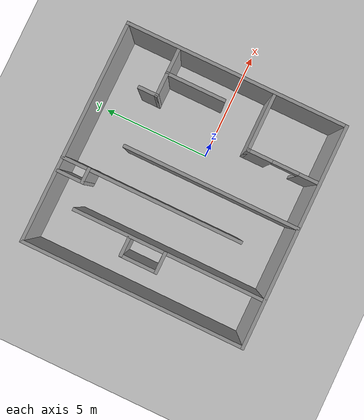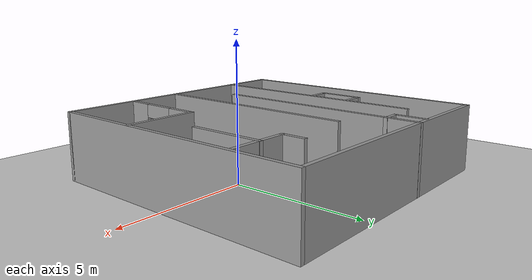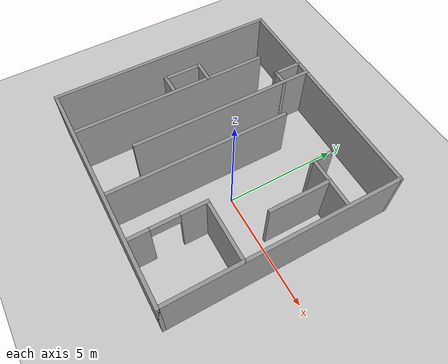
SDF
<sdf version="1.7">
 <world name="default">
  <light name="sun" type="directional">
   <pose>0 0 10 0 -0 0</pose>
   <diffuse>0.8 0.8 0.8 1</diffuse>
   <specular>0.2 0.2 0.2 1</specular>
   <attenuation>
    <range>1000</range>
    <constant>0.9</constant>
    <linear>0.01</linear>
    <quadratic>0.001</quadratic>
   </attenuation>
   <direction>-0.5 0.1 -0.9</direction>
   <spot><inner_angle>0</inner_angle><outer_angle>0</outer_angle><falloff>0</falloff></spot>
  </light>
  <model name="ground_plane">
   <static>1</static>
   <link name="link">
    <collision name="collision">
     <geometry><plane><normal>0 0 1</normal><size>100 100</size></plane></geometry>
     <surface><friction><ode><mu>100</mu><mu2>50</mu2></ode></friction></surface>
    </collision>
    <visual name="visual">
     <cast_shadows>0</cast_shadows>
     <geometry><plane><normal>0 0 1</normal><size>100 100</size></plane></geometry>
     <material>
      <script><uri>file://media/materials/scripts/gazebo.material</uri><name>Gazebo/Grey</name></script>
     </material>
    </visual>
   </link>
  </model>
  <gravity>0 0 -9.8</gravity>
  <magnetic_field>6e-06 2.3e-05 -4.2e-05</magnetic_field>
  <atmosphere type="adiabatic"/>
  <physics type="ode">
   <max_step_size>0.001</max_step_size>
   <real_time_factor>1</real_time_factor>
   <real_time_update_rate>1000</real_time_update_rate>
  </physics>
  <scene><ambient>0.4 0.4 0.4 1</ambient><background>0.7 0.7 0.7 1</background><shadows>1</shadows></scene>
  <spherical_coordinates>
   <surface_model>EARTH_WGS84</surface_model>
   <latitude_deg>0</latitude_deg>
   <longitude_deg>0</longitude_deg>
   <elevation>0</elevation>
   <heading_deg>0</heading_deg>
  </spherical_coordinates>
  <model name="test_nav">
   <pose>-1.63134 0.286027 0 0 0 -1.57657</pose>
   <link name="Wall_1">
    <collision name="Wall_1_Collision">
     <geometry><box><size>10.15 0.15 2.5</size></box></geometry>
     <pose>0 0 1.25 0 -0 0</pose>
    </collision>
    <visual name="Wall_1_Visual">
     <pose>0 0 1.25 0 -0 0</pose>
     <geometry><box><size>10.15 0.15 2.5</size></box></geometry>
     <material>
      <script><uri>file://media/materials/scripts/gazebo.material</uri><name>Gazebo/Grey</name></script>
      <ambient>1 1 1 1</ambient>
     </material>
     <meta><layer>0</layer></meta>
    </visual>
    <pose>-4.99761 0 0 0 -0 -1.5708</pose>
   </link>
   <link name="Wall_10">
    <collision name="Wall_10_Collision">
     <geometry><box><size>2.229 0.15 2.5</size></box></geometry>
     <pose>0 0 1.25 0 -0 0</pose>
    </collision>
    <visual name="Wall_10_Visual">
     <pose>0 0 1.25 0 -0 0</pose>
     <geometry><box><size>2.229 0.15 2.5</size></box></geometry>
     <material>
      <script><uri>file://media/materials/scripts/gazebo.material</uri><name>Gazebo/Grey</name></script>
      <ambient>1 1 1 1</ambient>
     </material>
     <meta><layer>0</layer></meta>
    </visual>
    <pose>-2.62361 3.8245 0 0 -0 1.5708</pose>
   </link>
   <link name="Wall_12">
    <collision name="Wall_12_Collision">
     <geometry><box><size>2.75 0.15 2.5</size></box></geometry>
     <pose>0 0 1.25 0 -0 0</pose>
    </collision>
    <visual name="Wall_12_Visual">
     <pose>0 0 1.25 0 -0 0</pose>
     <geometry><box><size>2.75 0.15 2.5</size></box></geometry>
     <material>
      <script><uri>file://media/materials/scripts/gazebo.material</uri><name>Gazebo/Grey</name></script>
      <ambient>1 1 1 1</ambient>
     </material>
     <meta><layer>0</layer></meta>
    </visual>
    <pose>-1.32861 3.8 0 0 -0 0</pose>
   </link>
   <link name="Wall_14">
    <collision name="Wall_14_Collision">
     <geometry><box><size>2.75 0.15 2.5</size></box></geometry>
     <pose>0 0 1.25 0 -0 0</pose>
    </collision>
    <visual name="Wall_14_Visual">
     <pose>0 0 1.25 0 -0 0</pose>
     <geometry><box><size>2.75 0.15 2.5</size></box></geometry>
     <material>
      <script><uri>file://media/materials/scripts/gazebo.material</uri><name>Gazebo/Grey</name></script>
      <ambient>1 1 1 1</ambient>
     </material>
     <meta><layer>0</layer></meta>
    </visual>
    <pose>1.76621 3.67736 0 0 -0 -1.5708</pose>
   </link>
   <link name="Wall_15">
    <pose>3.31621 2.37736 0 0 -0 0</pose>
    <visual name="Wall_15_Visual_0">
     <pose>-1.03607 0 1.25 0 -0 0</pose>
     <geometry><box><size>1.17786 0.15 2.5</size></box></geometry>
     <material>
      <script><uri>file://media/materials/scripts/gazebo.material</uri><name>Gazebo/Grey</name></script>
      <ambient>1 1 1 1</ambient>
     </material>
     <meta><layer>0</layer></meta>
    </visual>
    <collision name="Wall_15_Collision_0">
     <geometry><box><size>1.17786 0.15 2.5</size></box></geometry>
     <pose>-1.03607 0 1.25 0 -0 0</pose>
    </collision>
    <visual name="Wall_15_Visual_1">
     <pose>1.18893 0 1.25 0 -0 0</pose>
     <geometry><box><size>0.872144 0.15 2.5</size></box></geometry>
     <material>
      <script><uri>file://media/materials/scripts/gazebo.material</uri><name>Gazebo/Grey</name></script>
      <ambient>1 1 1 1</ambient>
     </material>
     <meta><layer>0</layer></meta>
    </visual>
    <collision name="Wall_15_Collision_1">
     <geometry><box><size>0.872144 0.15 2.5</size></box></geometry>
     <pose>1.18893 0 1.25 0 -0 0</pose>
    </collision>
    <visual name="Wall_15_Visual_2">
     <pose>0.152856 0 2.25 0 -0 0</pose>
     <geometry><box><size>1.2 0.15 0.5</size></box></geometry>
     <material>
      <script><uri>file://media/materials/scripts/gazebo.material</uri><name>Gazebo/Grey</name></script>
      <ambient>1 1 1 1</ambient>
     </material>
     <meta><layer>0</layer></meta>
    </visual>
    <collision name="Wall_15_Collision_2">
     <geometry><box><size>1.2 0.15 0.5</size></box></geometry>
     <pose>0.152856 0 2.25 0 -0 0</pose>
    </collision>
   </link>
   <link name="Wall_19">
    <collision name="Wall_19_Collision">
     <geometry><box><size>8 0.15 2.5</size></box></geometry>
     <pose>0 0 1.25 0 -0 0</pose>
    </collision>
    <visual name="Wall_19_Visual">
     <pose>0 0 1.25 0 -0 0</pose>
     <geometry><box><size>8 0.15 2.5</size></box></geometry>
     <material>
      <script><uri>file://media/materials/scripts/gazebo.material</uri><name>Gazebo/Grey</name></script>
      <ambient>1 1 1 1</ambient>
     </material>
     <meta><layer>0</layer></meta>
    </visual>
    <pose>1.03694 0.327172 0 0 -0 3.14159</pose>
   </link>
   <link name="Wall_22">
    <collision name="Wall_22_Collision">
     <geometry><box><size>8.25 0.15 2.5</size></box></geometry>
     <pose>0 0 1.25 0 -0 0</pose>
    </collision>
    <visual name="Wall_22_Visual">
     <pose>0 0 1.25 0 -0 0</pose>
     <geometry><box><size>8.25 0.15 2.5</size></box></geometry>
     <material>
      <script><uri>file://media/materials/scripts/gazebo.material</uri><name>Gazebo/Grey</name></script>
      <ambient>1 1 1 1</ambient>
     </material>
     <meta><layer>0</layer></meta>
    </visual>
    <pose>-0.952391 -1.17653 0 0 -0 0</pose>
   </link>
   <link name="Wall_25">
    <collision name="Wall_25_Collision">
     <geometry><box><size>8.75 0.15 2.5</size></box></geometry>
     <pose>0 0 1.25 0 -0 0</pose>
    </collision>
    <visual name="Wall_25_Visual">
     <pose>0 0 1.25 0 -0 0</pose>
     <geometry><box><size>8.75 0.15 2.5</size></box></geometry>
     <material>
      <script><uri>file://media/materials/scripts/gazebo.material</uri><name>Gazebo/Grey</name></script>
      <ambient>1 1 1 1</ambient>
     </material>
     <meta><layer>0</layer></meta>
    </visual>
    <pose>0.675084 -2.91306 0 0 -0 3.14159</pose>
   </link>
   <link name="Wall_27">
    <collision name="Wall_27_Collision">
     <geometry><box><size>1 0.15 2.5</size></box></geometry>
     <pose>0 0 1.25 0 -0 0</pose>
    </collision>
    <visual name="Wall_27_Visual">
     <pose>0 0 1.25 0 -0 0</pose>
     <geometry><box><size>1 0.15 2.5</size></box></geometry>
     <material>
      <script><uri>file://media/materials/scripts/gazebo.material</uri><name>Gazebo/Grey</name></script>
      <ambient>1 1 1 1</ambient>
     </material>
     <meta><layer>0</layer></meta>
    </visual>
    <pose>-1.09107 -3.3471 0 0 -0 -1.5708</pose>
   </link>
   <link name="Wall_28">
    <collision name="Wall_28_Collision">
     <geometry><box><size>1.75 0.15 2.5</size></box></geometry>
     <pose>0 0 1.25 0 -0 0</pose>
    </collision>
    <visual name="Wall_28_Visual">
     <pose>0 0 1.25 0 -0 0</pose>
     <geometry><box><size>1.75 0.15 2.5</size></box></geometry>
     <material>
      <script><uri>file://media/materials/scripts/gazebo.material</uri><name>Gazebo/Grey</name></script>
      <ambient>1 1 1 1</ambient>
     </material>
     <meta><layer>0</layer></meta>
    </visual>
    <pose>-0.291074 -3.7721 0 0 -0 0</pose>
   </link>
   <link name="Wall_29">
    <collision name="Wall_29_Collision">
     <geometry><box><size>1 0.15 2.5</size></box></geometry>
     <pose>0 0 1.25 0 -0 0</pose>
    </collision>
    <visual name="Wall_29_Visual">
     <pose>0 0 1.25 0 -0 0</pose>
     <geometry><box><size>1 0.15 2.5</size></box></geometry>
     <material>
      <script><uri>file://media/materials/scripts/gazebo.material</uri><name>Gazebo/Grey</name></script>
      <ambient>1 1 1 1</ambient>
     </material>
     <meta><layer>0</layer></meta>
    </visual>
    <pose>0.508926 -3.3471 0 0 -0 1.5708</pose>
   </link>
   <link name="Wall_3">
    <collision name="Wall_3_Collision">
     <geometry><box><size>10.15 0.15 2.5</size></box></geometry>
     <pose>0 0 1.25 0 -0 0</pose>
    </collision>
    <visual name="Wall_3_Visual">
     <pose>0 0 1.25 0 -0 0</pose>
     <geometry><box><size>10.15 0.15 2.5</size></box></geometry>
     <material>
      <script><uri>file://media/materials/scripts/gazebo.material</uri><name>Gazebo/Grey</name></script>
      <ambient>1 1 1 1</ambient>
     </material>
     <meta><layer>0</layer></meta>
    </visual>
    <pose>5.00239 0 0 0 -0 -1.5708</pose>
   </link>
   <link name="Wall_31">
    <collision name="Wall_31_Collision">
     <geometry><box><size>0.75 0.15 2.5</size></box></geometry>
     <pose>0 0 1.25 0 -0 0</pose>
    </collision>
    <visual name="Wall_31_Visual">
     <pose>0 0 1.25 0 -0 0</pose>
     <geometry><box><size>0.75 0.15 2.5</size></box></geometry>
     <material>
      <script><uri>file://media/materials/scripts/gazebo.material</uri><name>Gazebo/Grey</name></script>
      <ambient>1 1 1 1</ambient>
     </material>
     <meta><layer>0</layer></meta>
    </visual>
    <pose>-3.81726 -1.46443 0 0 -0 -1.5708</pose>
   </link>
   <link name="Wall_32">
    <collision name="Wall_32_Collision">
     <geometry><box><size>1.25 0.15 2.5</size></box></geometry>
     <pose>0 0 1.25 0 -0 0</pose>
    </collision>
    <visual name="Wall_32_Visual">
     <pose>0 0 1.25 0 -0 0</pose>
     <geometry><box><size>1.25 0.15 2.5</size></box></geometry>
     <material>
      <script><uri>file://media/materials/scripts/gazebo.material</uri><name>Gazebo/Grey</name></script>
      <ambient>1 1 1 1</ambient>
     </material>
     <meta><layer>0</layer></meta>
    </visual>
    <pose>-4.36726 -1.76443 0 0 -0 3.14159</pose>
   </link>
   <link name="Wall_5">
    <collision name="Wall_5_Collision">
     <geometry><box><size>10.15 0.15 2.5</size></box></geometry>
     <pose>0 0 1.25 0 -0 0</pose>
    </collision>
    <visual name="Wall_5_Visual">
     <pose>0 0 1.25 0 -0 0</pose>
     <geometry><box><size>10.15 0.15 2.5</size></box></geometry>
     <material>
      <script><uri>file://media/materials/scripts/gazebo.material</uri><name>Gazebo/Grey</name></script>
      <ambient>1 1 1 1</ambient>
     </material>
     <meta><layer>0</layer></meta>
    </visual>
    <pose>0.002391 -5 0 0 -0 0</pose>
   </link>
   <link name="Wall_7">
    <collision name="Wall_7_Collision">
     <geometry><box><size>10.15 0.15 2.5</size></box></geometry>
     <pose>0 0 1.25 0 -0 0</pose>
    </collision>
    <visual name="Wall_7_Visual">
     <pose>0 0 1.25 0 -0 0</pose>
     <geometry><box><size>10.15 0.15 2.5</size></box></geometry>
     <material>
      <script><uri>file://media/materials/scripts/gazebo.material</uri><name>Gazebo/Grey</name></script>
      <ambient>1 1 1 1</ambient>
     </material>
     <meta><layer>0</layer></meta>
    </visual>
    <pose>0.002391 5 0 0 -0 0</pose>
   </link>
   <link name="Wall_9">
    <collision name="Wall_9_Collision">
     <geometry><box><size>0.924065 0.15 2.5</size></box></geometry>
     <pose>0 0 1.25 0 -0 0</pose>
    </collision>
    <visual name="Wall_9_Visual">
     <pose>0 0 1.25 0 -0 0</pose>
     <geometry><box><size>0.924065 0.15 2.5</size></box></geometry>
     <material>
      <script><uri>file://media/materials/scripts/gazebo.material</uri><name>Gazebo/Grey</name></script>
      <ambient>1 1 1 1</ambient>
     </material>
     <meta><layer>0</layer></meta>
    </visual>
    <pose>-3.01061 2.785 0 0 -0 0</pose>
   </link>
   <static>1</static>
  </model>
 </world>
</sdf>
